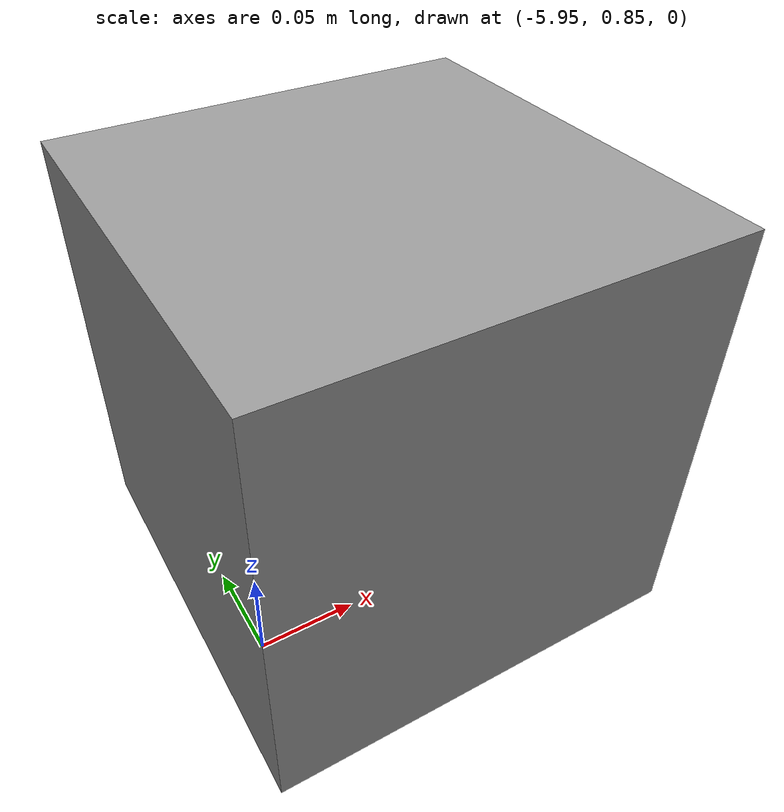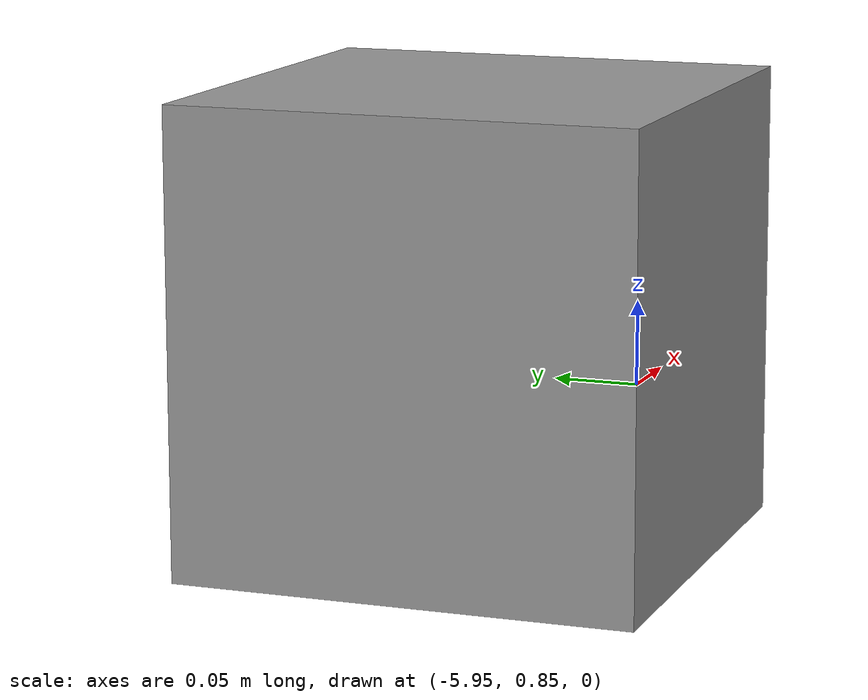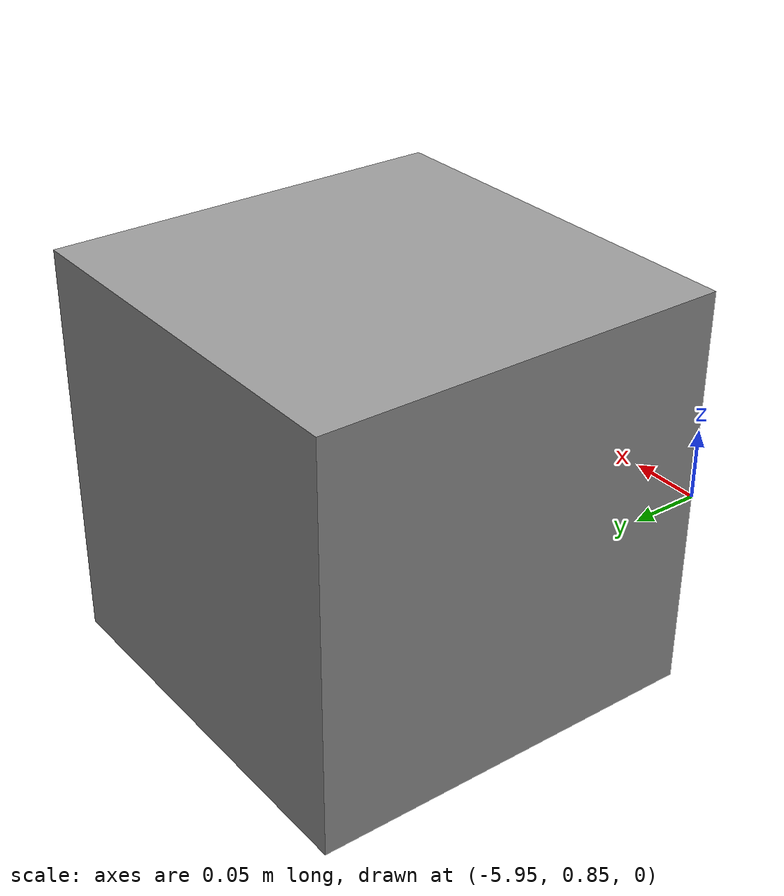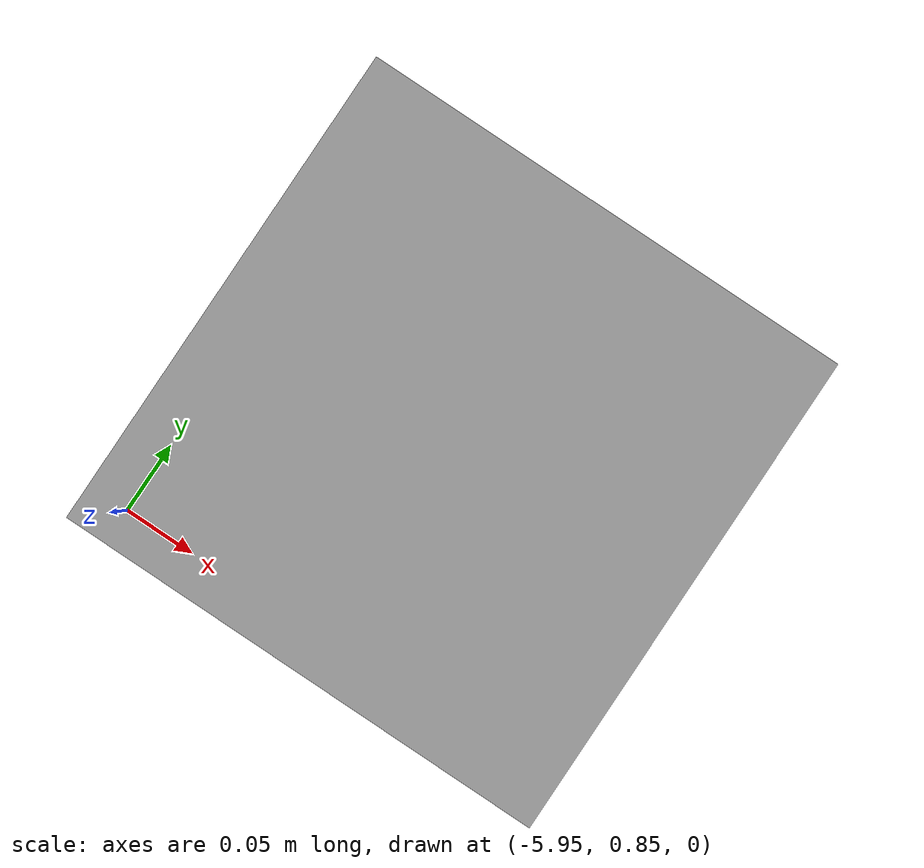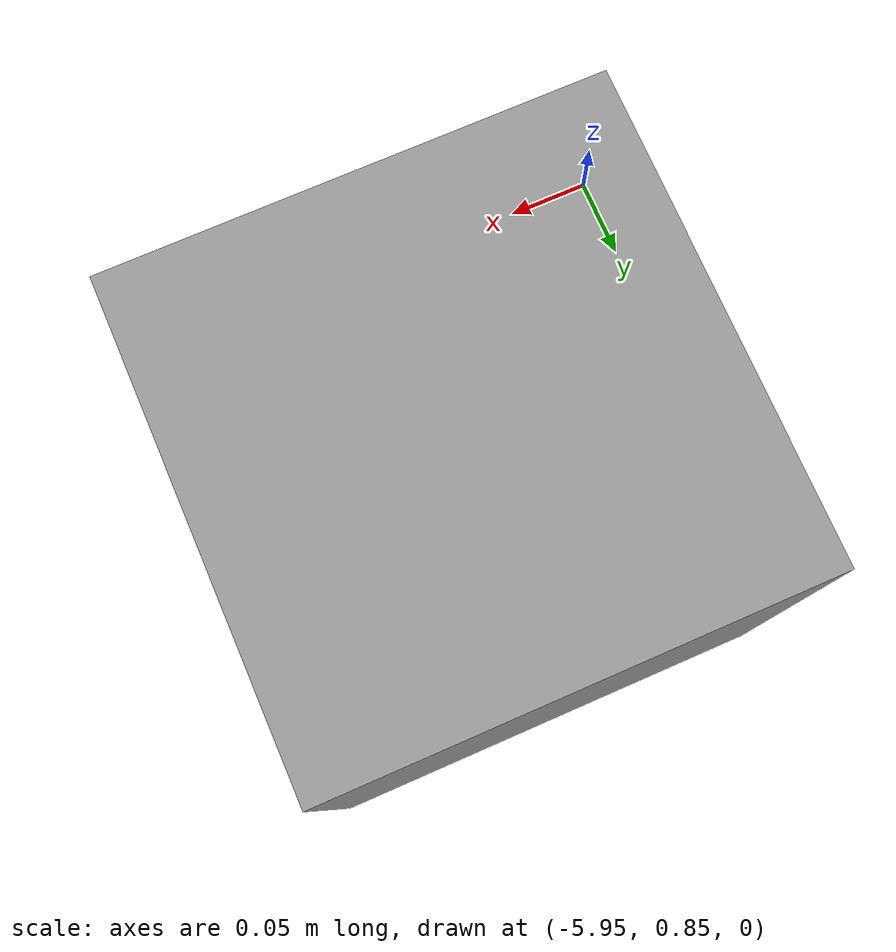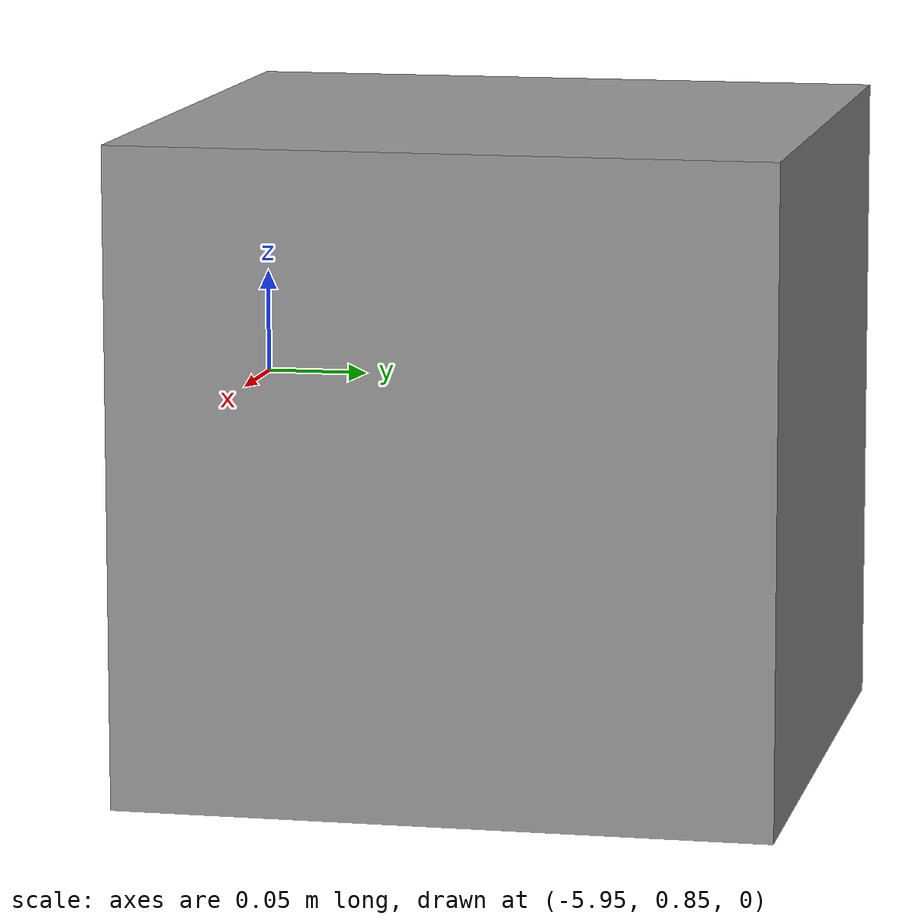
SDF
<?xml version="1.0" ?>
<sdf version="1.4">
  <model name="kobuki_charging_station">
    <pose>-5.8 1 0 0 0 3.14</pose>
    <static>true</static>
      <link name="charging_station_link">
        <collision name="m    m   m   collision">
          <pose>0 0 0 0 0 0</pose>
          <geometry>
            <box>
              <size>0.3 0.3 0.3</size>
            </box>
          </geometry>
        </collision>
        <visual name="visual">
          <pose>0 0 0 0 0 0</pose>
          <geometry>
            <box>
              <size>0.3 0.3 0.3</size>
            </box>
          </geometry>
          <material>
            <script>
              <uri>file://media/materials/scripts/gazebo.material</uri>
              <name>Gazebo/Grey</name>
            </script>
          </material>
        </visual>
      </link>
  </model>
</sdf>
